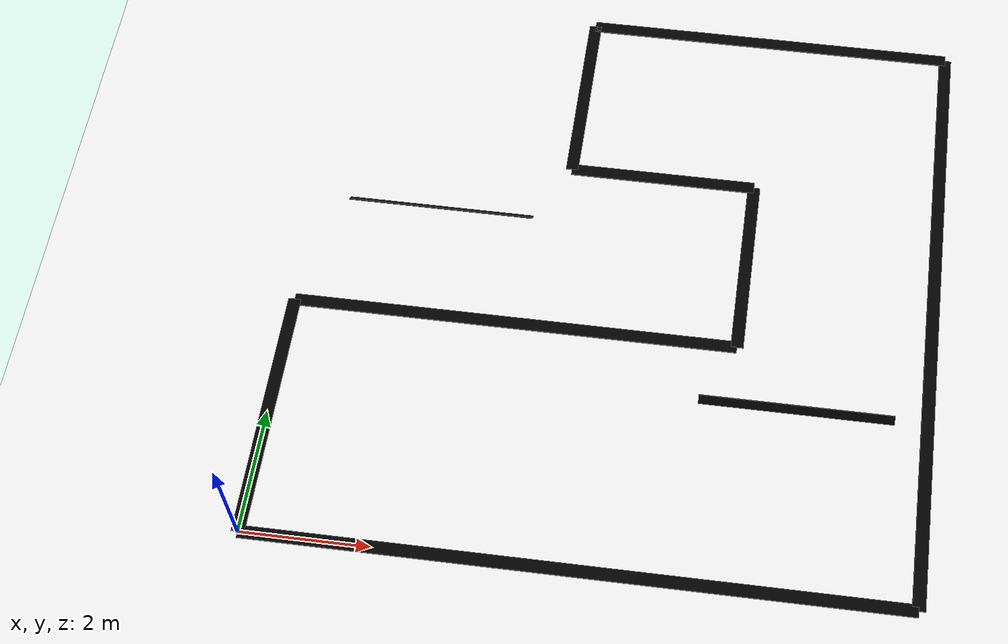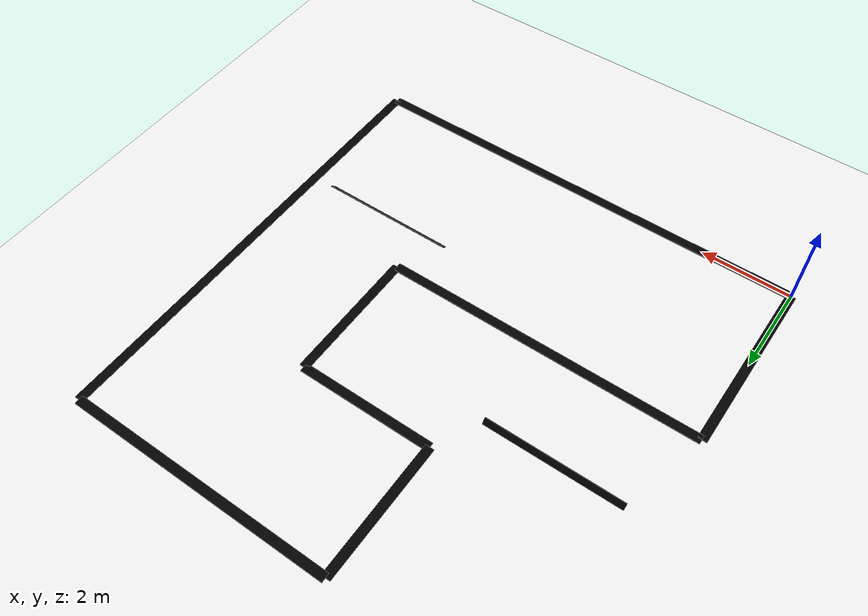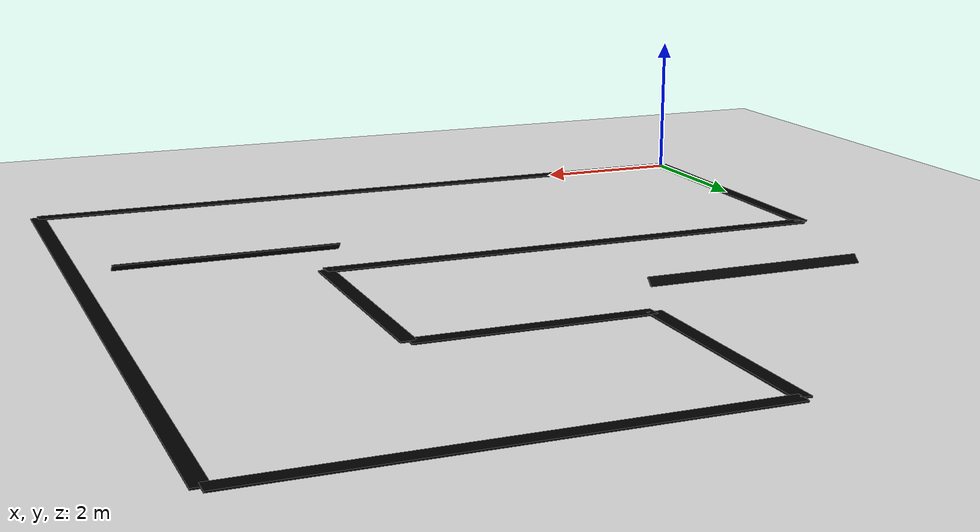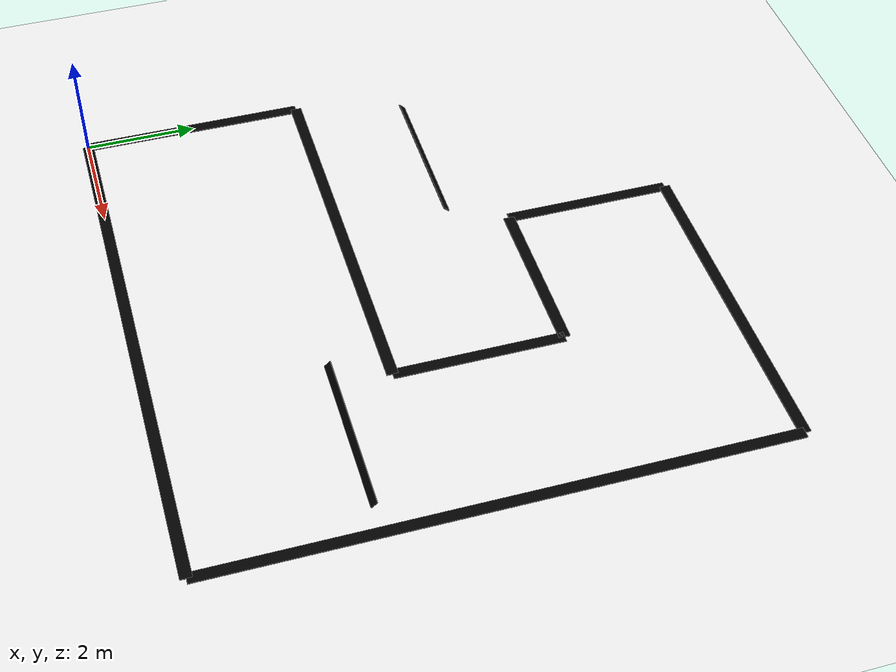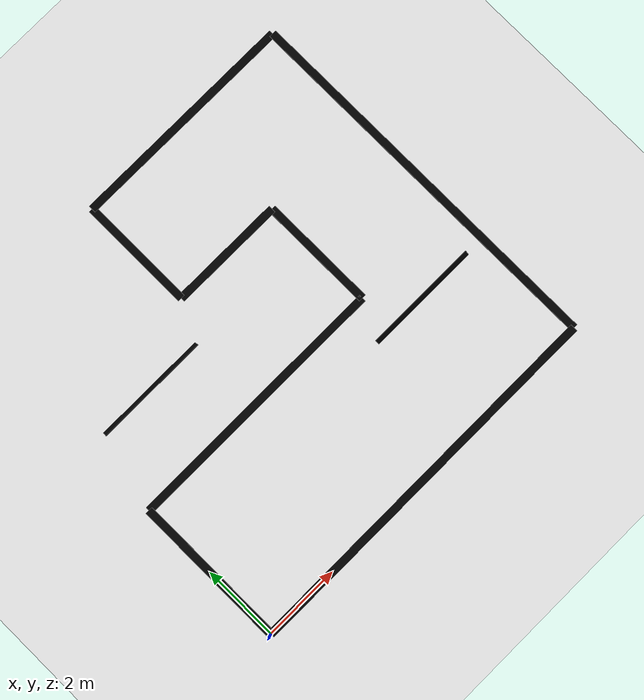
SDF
<?xml version="1.0" ?>
<sdf version="1.6">
  <world name="line_follower_world">

    <!-- World-level plugins -->
    <plugin name="gz::sim::systems::Physics" filename="gz-sim-physics-system"/>
    <plugin name="gz::sim::systems::UserCommands" filename="gz-sim-user-commands-system"/>
    <plugin name="gz::sim::systems::SceneBroadcaster" filename="gz-sim-scene-broadcaster-system"/>
    <plugin name="gz::sim::systems::Sensors" filename="gz-sim-sensors-system">
        <render_engine>ogre2</render_engine>
    </plugin>

    <!-- Lighting -->
    <light type="directional" name="sun">
        <cast_shadows>true</cast_shadows>
        <pose>0 0 10 0 0 0</pose>
        <diffuse>1 1 1 1</diffuse>
        <specular>0.5 0.5 0.5 1</specular>
    </light>

    <!-- Ground plane -->
    <model name="ground_plane">
      <static>true</static>
      <link name="ground">
        <collision name="ground_collision">
          <geometry>
            <plane><normal>0 0 1</normal><size>50 50</size></plane>
          </geometry>
        </collision>
        <visual name="ground_visual">
          <geometry>
            <plane><normal>0 0 1</normal><size>50 50</size></plane>
          </geometry>
          <material>
            <ambient>0.9 0.9 0.9 1</ambient>
            <diffuse>0.9 0.9 0.9 1</diffuse>
          </material>
        </visual>
      </link>
    </model>

    <!-- Track -->
    <model name="black_line_track">
      <static>true</static>
      <link name="track_link">

        <visual name="base_horizontal">
          <pose>5 0 0.01 0 0 0</pose>
          <geometry><box><size>10 0.2 0.02</size></box></geometry>
          <material><ambient>0 0 0 1</ambient><diffuse>0 0 0 1</diffuse></material>
        </visual>
        <collision name="base_horizontal_collision">
          <pose>5 0 0.01 0 0 0</pose>
          <geometry><box><size>10 0.2 0.02</size></box></geometry>
        </collision>

        <visual name="right_vertical">
          <pose>10 5 0.01 0 0 1.5708</pose>
          <geometry><box><size>10 0.2 0.02</size></box></geometry>
          <material><ambient>0 0 0 1</ambient><diffuse>0 0 0 1</diffuse></material>
        </visual>
        <collision name="right_vertical_collision">
          <pose>10 5 0.01 0 0 1.5708</pose>
          <geometry><box><size>10 0.2 0.02</size></box></geometry>
        </collision>

        <visual name="top_horizontal">
          <pose>7 10 0.01 0 0 0</pose>
          <geometry><box><size>6 0.2 0.02</size></box></geometry>
          <material><ambient>0 0 0 1</ambient><diffuse>0 0 0 1</diffuse></material>
        </visual>
        <collision name="top_horizontal_collision">
          <pose>7 10 0.01 0 0 0</pose>
          <geometry><box><size>6 0.2 0.02</size></box></geometry>
        </collision>

        <visual name="inner_vertical1">
          <pose>4 8.5 0.01 0 0 1.5708</pose>
          <geometry><box><size>3 0.2 0.02</size></box></geometry>
          <material><ambient>0 0 0 1</ambient><diffuse>0 0 0 1</diffuse></material>
        </visual>
        <collision name="inner_vertical1_collision">
          <pose>4 8.5 0.01 0 0 1.5708</pose>
          <geometry><box><size>3 0.2 0.02</size></box></geometry>
        </collision>

        <visual name="inner_horizontal">
          <pose>5.5 7 0.01 0 0 0</pose>
          <geometry><box><size>3 0.2 0.02</size></box></geometry>
          <material><ambient>0 0 0 1</ambient><diffuse>0 0 0 1</diffuse></material>
        </visual>
        <collision name="inner_horizontal_collision">
          <pose>5.5 7 0.01 0 0 0</pose>
          <geometry><box><size>3 0.2 0.02</size></box></geometry>
        </collision>

        <visual name="inner_vertical2">
          <pose>7 5.5 0.01 0 0 1.5708</pose>
          <geometry><box><size>3 0.2 0.02</size></box></geometry>
          <material><ambient>0 0 0 1</ambient><diffuse>0 0 0 1</diffuse></material>
        </visual>
        <collision name="inner_vertical2_collision">
          <pose>7 5.5 0.01 0 0 1.5708</pose>
          <geometry><box><size>3 0.2 0.02</size></box></geometry>
        </collision>

        <visual name="lower_horizontal">
          <pose>3.5 4 0.01 0 0 0</pose>
          <geometry><box><size>7 0.2 0.02</size></box></geometry>
          <material><ambient>0 0 0 1</ambient><diffuse>0 0 0 1</diffuse></material>
        </visual>
        <collision name="lower_horizontal_collision">
          <pose>3.5 4 0.01 0 0 0</pose>
          <geometry><box><size>7 0.2 0.02</size></box></geometry>
        </collision>

        <visual name="final_vertical">
          <pose>0 2 0.01 0 0 1.5708</pose>
          <geometry><box><size>4 0.2 0.02</size></box></geometry>
          <material><ambient>0 0 0 1</ambient><diffuse>0 0 0 1</diffuse></material>
        </visual>
        <collision name="final_vertical_collision">
          <pose>0 2 0.01 0 0 1.5708</pose>
          <geometry><box><size>4 0.2 0.02</size></box></geometry>
        </collision>

        <visual name="diagonal1">
          <pose>8 3 0.01 0.7854 0 0</pose>
          <geometry><box><size>3 0.2 0.02</size></box></geometry>
          <material><ambient>0 0 0 1</ambient><diffuse>0 0 0 1</diffuse></material>
        </visual>
        <collision name="diagonal1_collision">
          <pose>8 3 0.01 0.7854 0 0</pose>
          <geometry><box><size>3 0.2 0.02</size></box></geometry>
        </collision>

        <visual name="diagonal2">
          <pose>2 6 0.01 -0.7854 0 0</pose>
          <geometry><box><size>3 0.2 0.02</size></box></geometry>
          <material><ambient>0 0 0 1</ambient><diffuse>0 0 0 1</diffuse></material>
        </visual>
        <collision name="diagonal2_collision">
          <pose>2 6 0.01 -0.7854 0 0</pose>
          <geometry><box><size>3 0.2 0.02</size></box></geometry>
        </collision>

      </link>
    </model>

  </world>
</sdf>
